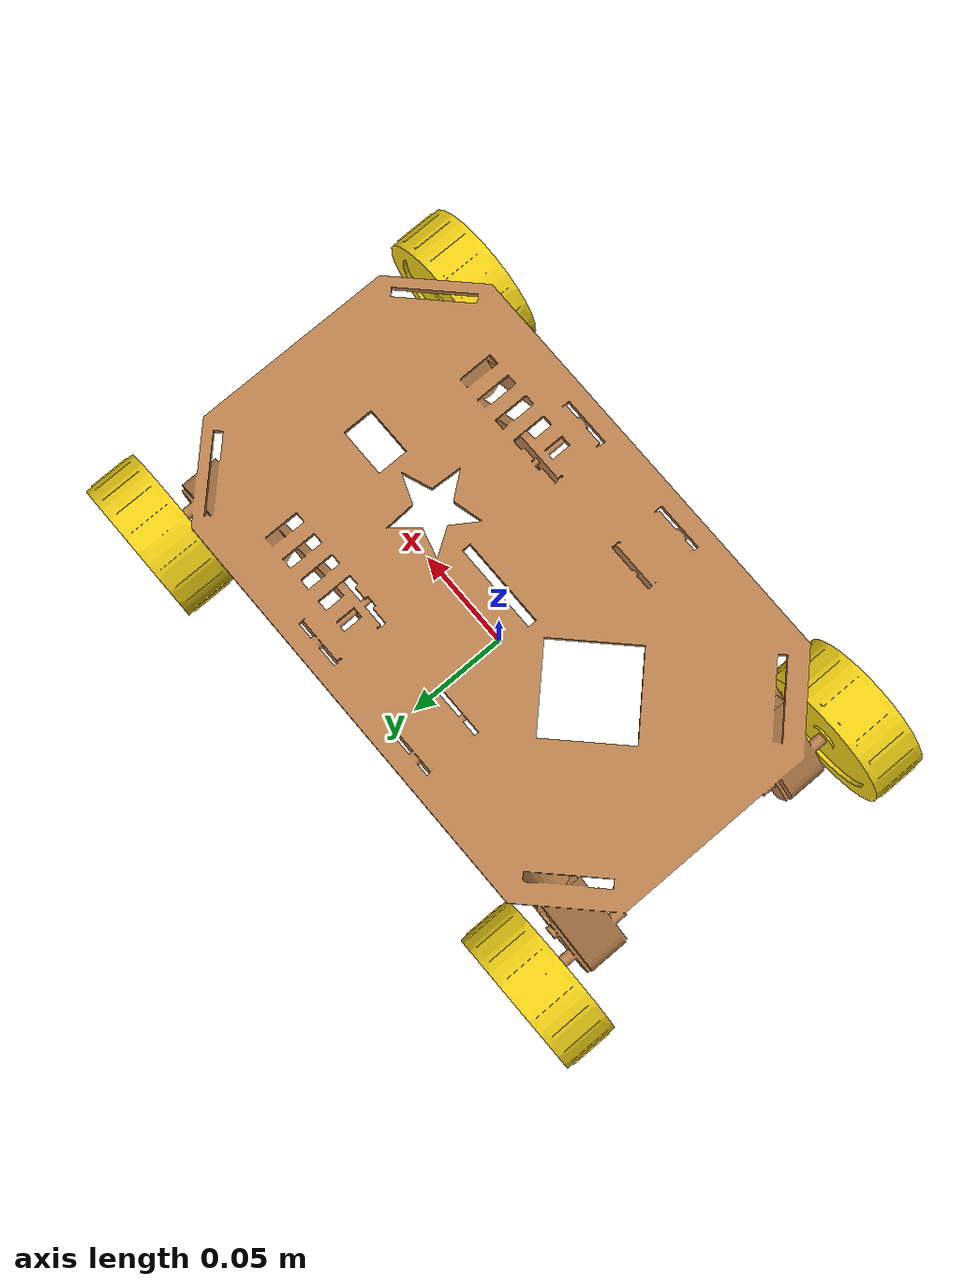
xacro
<?xml version="1.0"?>
<robot name="weed_laser_robot" xmlns:xacro="http://www.ros.org/wiki/xacro">

  <!-- Materials & Colors                         -->
  <material name="wood_brown">
    <color rgba="0.72 0.50 0.30 1.0"/>
  </material>

  <material name="yellow_plastic">
    <color rgba="0.95 0.82 0.08 1.0"/>
  </material>

  <material name="tire_black">
    <color rgba="0.15 0.15 0.15 1.0"/>
  </material>

  <material name="silver_metal">
    <color rgba="0.80 0.82 0.85 1.0"/>
  </material>

  <!-- Base Footprint (Ground Projection Z = 0)   -->
  <link name="base_footprint"/>

  <joint name="base_footprint_joint" type="fixed">
    <parent link="base_footprint"/>
    <child link="base_link"/>
    <origin xyz="0.0 0.0 0.0" rpy="0 0 0"/>
  </joint>

  <!-- Base Link (Chassis Frame + Fixed Actuators)-->
  <link name="base_link">
    <inertial>
      <!-- Mass of wooden deck, arch legs, hardware, and 4 TT motor gearboxes (~0.65 kg) -->
      <mass value="0.650"/>
      <origin xyz="0.0 0.0 0.095" rpy="0 0 0"/>
      <!-- Ixx, Iyy, Izz for box approx 0.256 x 0.155 x 0.125 -->
      <inertia ixx="0.0021" ixy="0.0" ixz="0.0"
               iyy="0.0042" iyz="0.0"
               izz="0.0051"/>
    </inertial>

    <visual>
      <origin xyz="0.0 0.0 0.0" rpy="0 0 0"/>
      <geometry>
        <!-- STL mesh in millimeters scaled to meters -->
        <mesh filename="package://weed_laser_robot/meshes/chassis_base.stl" scale="0.001 0.001 0.001"/>
      </geometry>
      <material name="wood_brown"/>
    </visual>

    <!-- Collision geometry: Top chassis deck + leg bounds -->
    <collision>
      <origin xyz="0.0 0.0 0.12675" rpy="0 0 0"/>
      <geometry>
        <box size="0.256 0.155 0.0035"/>
      </geometry>
    </collision>
    <collision>
      <origin xyz="0.0 0.0565 0.080" rpy="0 0 0"/>
      <geometry>
        <box size="0.255 0.022 0.090"/>
      </geometry>
    </collision>
    <collision>
      <origin xyz="0.0 -0.0565 0.080" rpy="0 0 0"/>
      <geometry>
        <box size="0.255 0.022 0.090"/>
      </geometry>
    </collision>
  </link>

  <!-- Wheel Macro                                -->
  <xacro:macro name="rover_wheel" params="prefix x_pos y_pos z_pos flip_y">
    <link name="${prefix}_wheel_link">
      <inertial>
        <!-- Mass of yellow rim + rubber tire (~0.045 kg) -->
        <mass value="0.045"/>
        <origin xyz="0 0 0" rpy="0 0 0"/>
        <!-- Cylinder inertia: r=0.035, h=0.026 -->
        <inertia ixx="0.000016" ixy="0.0" ixz="0.0"
                 iyy="0.000027" iyz="0.0"
                 izz="0.000016"/>
      </inertial>

      <visual>
        <origin xyz="0 0 0" rpy="0 0 ${3.14159 if flip_y else 0}"/>
        <geometry>
          <mesh filename="package://weed_laser_robot/meshes/wheel.stl" scale="0.001 0.001 0.001"/>
        </geometry>
        <material name="yellow_plastic"/>
      </visual>

      <collision>
        <origin xyz="0 0 0" rpy="1.570796 0 0"/>
        <geometry>
          <cylinder radius="0.035" length="0.026"/>
        </geometry>
      </collision>
    </link>

    <joint name="${prefix}_wheel_joint" type="continuous">
      <parent link="base_link"/>
      <child link="${prefix}_wheel_link"/>
      <origin xyz="${x_pos} ${y_pos} ${z_pos}" rpy="0 0 0"/>
      <axis xyz="0 1 0"/>
      <limit effort="1.5" velocity="25.0"/>
      <dynamics damping="0.01" friction="0.05"/>
    </joint>

    <!-- Gazebo surface friction parameters for differential traction -->
    <gazebo reference="${prefix}_wheel_link">
      <mu1>1.2</mu1>
      <mu2>0.8</mu2>
      <kp>1000000.0</kp>
      <kd>100.0</kd>
      <minDepth>0.001</minDepth>
      <material>Gazebo/Yellow</material>
    </gazebo>
  </xacro:macro>

  <!-- Wheel Joint Instantiations                 -->
  <!-- Dimensions matching CAD exactly:           -->
  <!-- Front: X = +0.1275, Rear: X = -0.1275      -->
  <!-- Left: Y = +0.087,   Right: Y = -0.087      -->
  <!-- Ground clearance:   Z = 0.035 (R = 3.5cm)  -->
  <xacro:rover_wheel prefix="front_left"  x_pos="0.1275"  y_pos="0.087"  z_pos="0.035" flip_y="false"/>
  <xacro:rover_wheel prefix="rear_left"   x_pos="-0.1275" y_pos="0.087"  z_pos="0.035" flip_y="false"/>
  <xacro:rover_wheel prefix="front_right" x_pos="0.1275"  y_pos="-0.087" z_pos="0.035" flip_y="true"/>
  <xacro:rover_wheel prefix="rear_right"  x_pos="-0.1275" y_pos="-0.087" z_pos="0.035" flip_y="true"/>

  <!-- Gazebo Skid-Steer / Diff-Drive Plugin      -->
  <gazebo>
    <plugin name="skid_steer_drive_controller" filename="libgazebo_ros_diff_drive.so">
      <ros>
        <namespace>/</namespace>
        <remapping>cmd_vel:=cmd_vel</remapping>
        <remapping>odom:=odom</remapping>
      </ros>
      <update_rate>50</update_rate>
      <!-- 4-Wheel differential configuration -->
      <num_wheel_pairs>2</num_wheel_pairs>
      <left_joint>front_left_wheel_joint</left_joint>
      <left_joint>rear_left_wheel_joint</left_joint>
      <right_joint>front_right_wheel_joint</right_joint>
      <right_joint>rear_right_wheel_joint</right_joint>

      <!-- Kinematics -->
      <wheel_separation>0.174</wheel_separation>
      <wheel_diameter>0.070</wheel_diameter>

      <!-- Limits -->
      <max_wheel_torque>2.0</max_wheel_torque>
      <max_wheel_acceleration>1.5</max_wheel_acceleration>

      <!-- Output -->
      <publish_odom>true</publish_odom>
      <publish_odom_tf>true</publish_odom_tf>
      <publish_wheel_tf>true</publish_wheel_tf>
      <odometry_frame>odom</odometry_frame>
      <robot_base_frame>base_footprint</robot_base_frame>
    </plugin>
  </gazebo>

</robot>
